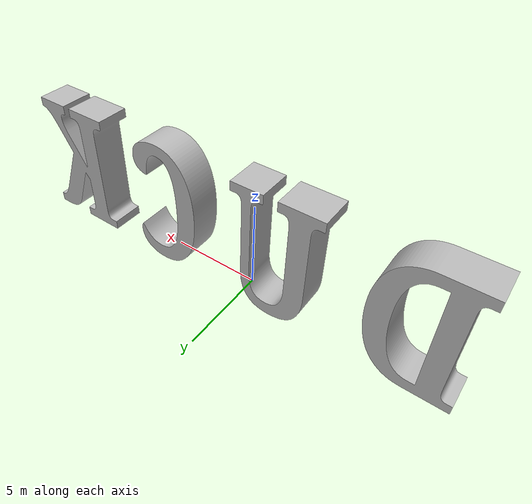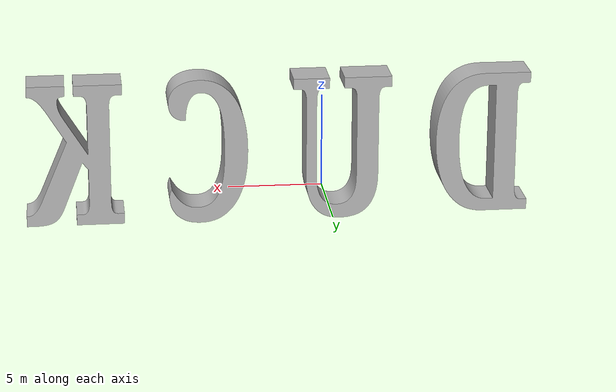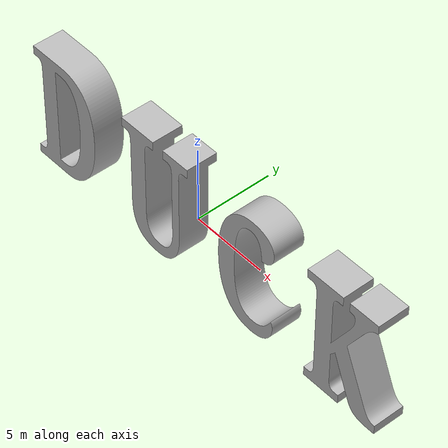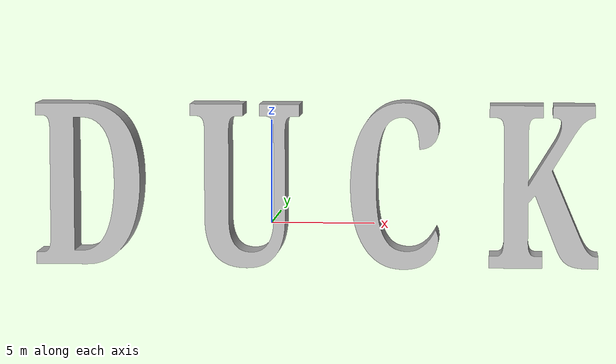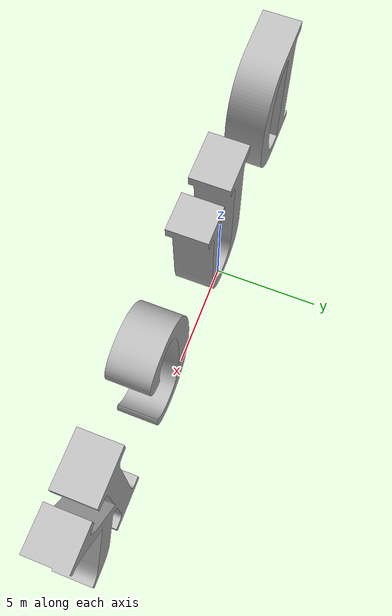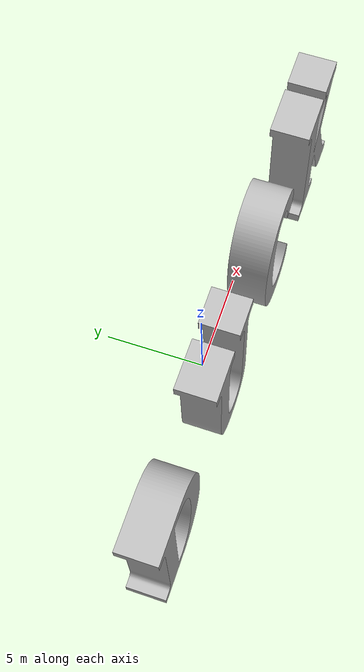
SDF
<sdf version='1.5'>
  <model name='text_DUCK'>
    <link name='DUCK'>
      <collision name='DUCK_inertia_collision'>
        <pose frame=''>0 0 6.05 1.570796 -0 0</pose>
        <geometry>
          <mesh>
            <scale>0.2 0.2 0.2</scale>
            <uri>model://text_description/meshes/D U C K.stl</uri>
          </mesh>
        </geometry>
        <surface>
          <contact>
            <ode>
              <min_depth>0.001</min_depth>
              <max_vel>0</max_vel>
            </ode>
          </contact>
          <friction>
            <ode/>
          </friction>
        </surface>
      </collision>
      <visual name='DUCK_inertia_visual'>
        <pose frame=''>0 0 6.05 1.570796 -0 0</pose>
        <geometry>
          <mesh>
            <scale>0.2 0.2 0.2</scale>
            <uri>model://text_description/meshes/D U C K.stl</uri>
          </mesh>
        </geometry>
      </visual>
      <kinematic>1</kinematic>
      <velocity_decay/>
    </link>
  </model>
</sdf>
